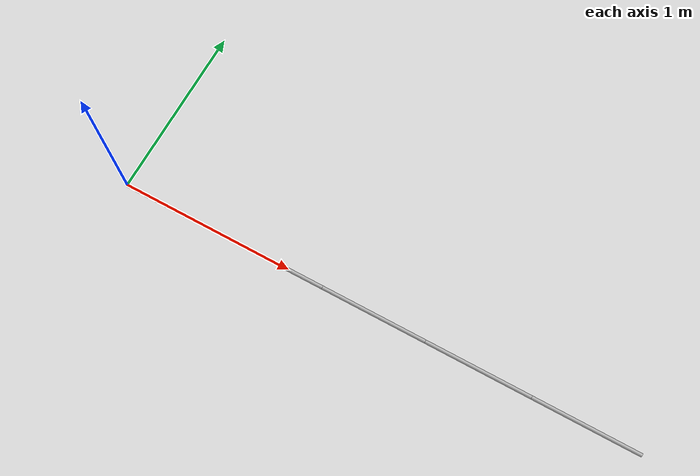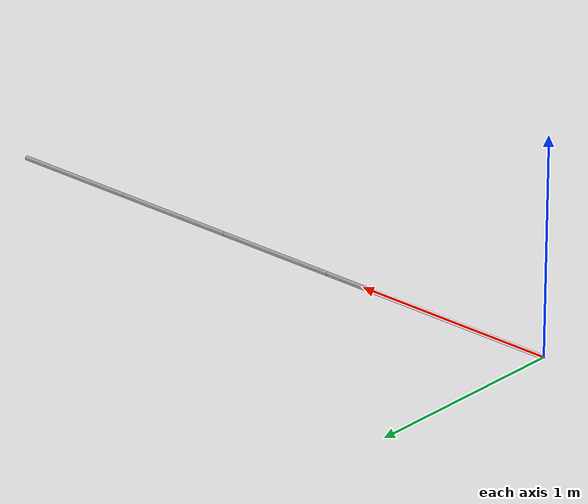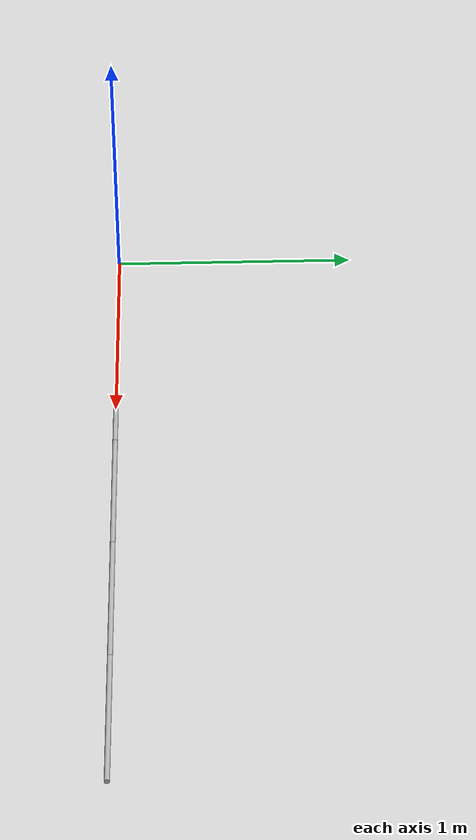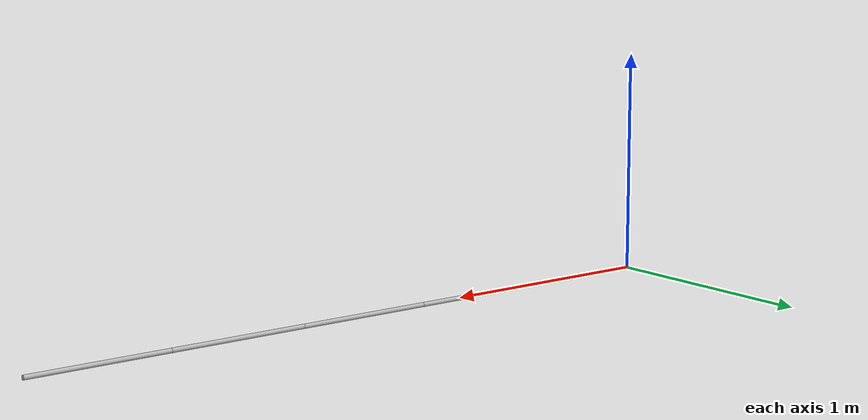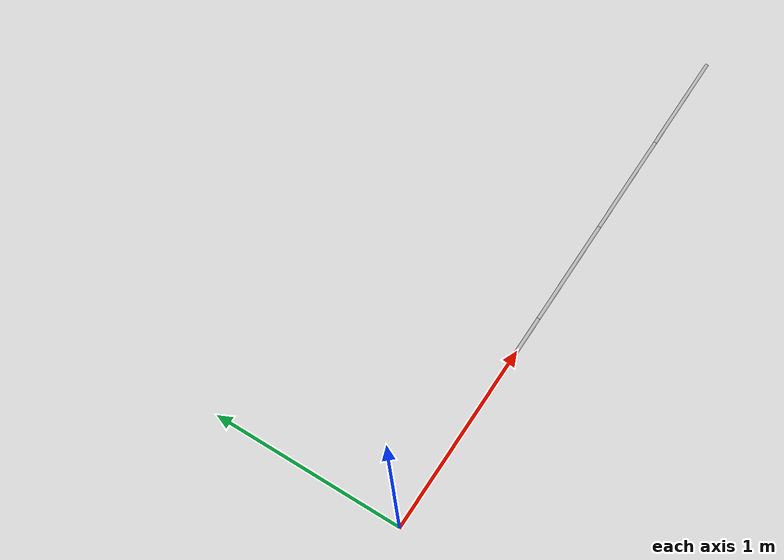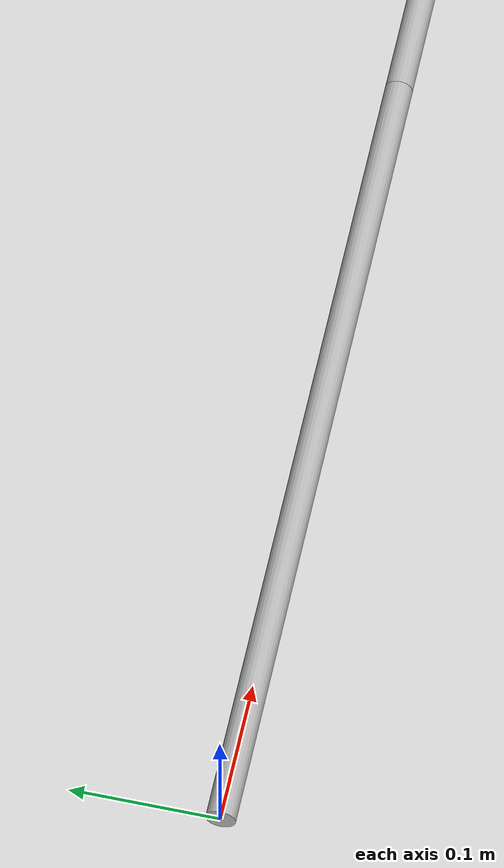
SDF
<?xml version="1.0" encoding="UTF-8"?>
<sdf version='1.7'>
  <model name='tether'>
    <link name='element_1'>
      <inertial>
        <pose>0.3 0 0 0 1.5708 0</pose>
        <mass>0.02</mass>
        <inertia>
          <ixx>0.0006005</ixx>
          <ixy>0</ixy>
          <ixz>0</ixz>
          <iyy>0.0006005</iyy>
          <iyz>0</iyz>
          <izz>1e-06</izz>
        </inertia>
      </inertial>
      <collision name='element_1_collision'>
        <pose>0.3 0 0 0 1.5708 0</pose>
        <geometry>
          <cylinder>
            <length>0.6</length>
            <radius>0.01</radius>
          </cylinder>
        </geometry>
      </collision>
      <visual name='element_1_visual'>
        <pose>0.3 0 0 0 1.5708 0</pose>
        <geometry>
          <cylinder>
            <length>0.6</length>
            <radius>0.01</radius>
          </cylinder>
        </geometry>
      </visual>
    </link>
    <joint name='joint_1_to_2' type='revolute'>
      <pose relative_to='element_1'>0.6 0 0 0 -0 0</pose>
      <parent>element_1</parent>
      <child>element_2</child>
      <axis>
        <xyz>0 0 1</xyz>
        <limit>
          <lower>-1e+16</lower>
          <upper>1e+16</upper>
        </limit>
        <dynamics>
          <spring_reference>0</spring_reference>
          <spring_stiffness>0</spring_stiffness>
        </dynamics>
      </axis>
    </joint>
    <link name='element_2'>
      <pose relative_to='joint_1_to_2'>0 0 0 0 -0 0</pose>
      <inertial>
        <pose>0.3 0 0 0 1.5708 0</pose>
        <mass>0.02</mass>
        <inertia>
          <ixx>0.0006005</ixx>
          <ixy>0</ixy>
          <ixz>0</ixz>
          <iyy>0.0006005</iyy>
          <iyz>0</iyz>
          <izz>1e-06</izz>
        </inertia>
      </inertial>
      <collision name='element_2_collision'>
        <pose>0.3 0 0 0 1.5708 0</pose>
        <geometry>
          <cylinder>
            <length>0.6</length>
            <radius>0.01</radius>
          </cylinder>
        </geometry>
      </collision>
      <visual name='element_2_visual'>
        <pose>0.3 0 0 0 1.5708 0</pose>
        <geometry>
          <cylinder>
            <length>0.6</length>
            <radius>0.01</radius>
          </cylinder>
        </geometry>
      </visual>
    </link>
    <joint name='joint_2_to_3' type='revolute'>
      <pose relative_to='element_2'>0.6 0 0 0 -0 0</pose>
      <parent>element_2</parent>
      <child>element_3</child>
      <axis>
        <xyz>0 0 1</xyz>
        <limit>
          <lower>-1e+16</lower>
          <upper>1e+16</upper>
        </limit>
        <dynamics>
          <spring_reference>0</spring_reference>
          <spring_stiffness>0</spring_stiffness>
        </dynamics>
      </axis>
    </joint>
    <link name='element_3'>
      <pose relative_to='joint_2_to_3'>0 0 0 0 -0 0</pose>
      <inertial>
        <pose>0.3 0 0 0 1.5708 0</pose>
        <mass>0.02</mass>
        <inertia>
          <ixx>0.0006005</ixx>
          <ixy>0</ixy>
          <ixz>0</ixz>
          <iyy>0.0006005</iyy>
          <iyz>0</iyz>
          <izz>1e-06</izz>
        </inertia>
      </inertial>
      <collision name='element_3_collision'>
        <pose>0.3 0 0 0 1.5708 0</pose>
        <geometry>
          <cylinder>
            <length>0.6</length>
            <radius>0.01</radius>
          </cylinder>
        </geometry>
      </collision>
      <visual name='element_3_visual'>
        <pose>0.3 0 0 0 1.5708 0</pose>
        <geometry>
          <cylinder>
            <length>0.6</length>
            <radius>0.01</radius>
          </cylinder>
        </geometry>
      </visual>
    </link>
    <joint name='joint_3_to_4' type='revolute'>
      <pose relative_to='element_3'>0.6 0 0 0 -0 0</pose>
      <parent>element_3</parent>
      <child>element_4</child>
      <axis>
        <xyz>0 0 1</xyz>
        <limit>
          <lower>-1e+16</lower>
          <upper>1e+16</upper>
        </limit>
        <dynamics>
          <spring_reference>0</spring_reference>
          <spring_stiffness>0</spring_stiffness>
        </dynamics>
      </axis>
    </joint>
    <link name='element_4'>
      <pose relative_to='joint_3_to_4'>0 0 0 0 -0 0</pose>
      <inertial>
        <pose>0.3 0 0 0 1.5708 0</pose>
        <mass>0.02</mass>
        <inertia>
          <ixx>0.0006005</ixx>
          <ixy>0</ixy>
          <ixz>0</ixz>
          <iyy>0.0006005</iyy>
          <iyz>0</iyz>
          <izz>1e-06</izz>
        </inertia>
      </inertial>
      <collision name='element_4_collision'>
        <pose>0.3 0 0 0 1.5708 0</pose>
        <geometry>
          <cylinder>
            <length>0.6</length>
            <radius>0.01</radius>
          </cylinder>
        </geometry>
      </collision>
      <visual name='element_4_visual'>
        <pose>0.3 0 0 0 1.5708 0</pose>
        <geometry>
          <cylinder>
            <length>0.6</length>
            <radius>0.01</radius>
          </cylinder>
        </geometry>
      </visual>
    </link>
    <joint name='joint_4_to_5' type='revolute'>
      <pose relative_to='element_4'>0.6 0 0 0 -0 0</pose>
      <parent>element_4</parent>
      <child>element_5</child>
      <axis>
        <xyz>0 0 1</xyz>
        <limit>
          <lower>-1e+16</lower>
          <upper>1e+16</upper>
        </limit>
        <dynamics>
          <spring_reference>0</spring_reference>
          <spring_stiffness>0</spring_stiffness>
        </dynamics>
      </axis>
    </joint>
    <link name='element_5'>
      <pose relative_to='joint_4_to_5'>0 0 0 0 -0 0</pose>
      <inertial>
        <pose>0.3 0 0 0 1.5708 0</pose>
        <mass>0.02</mass>
        <inertia>
          <ixx>0.0006005</ixx>
          <ixy>0</ixy>
          <ixz>0</ixz>
          <iyy>0.0006005</iyy>
          <iyz>0</iyz>
          <izz>1e-06</izz>
        </inertia>
      </inertial>
      <collision name='element_5_collision'>
        <pose>0.3 0 0 0 1.5708 0</pose>
        <geometry>
          <cylinder>
            <length>0.6</length>
            <radius>0.01</radius>
          </cylinder>
        </geometry>
      </collision>
      <visual name='element_5_visual'>
        <pose>0.3 0 0 0 1.5708 0</pose>
        <geometry>
          <cylinder>
            <length>0.6</length>
            <radius>0.01</radius>
          </cylinder>
        </geometry>
      </visual>
    </link>
  </model>
</sdf>
